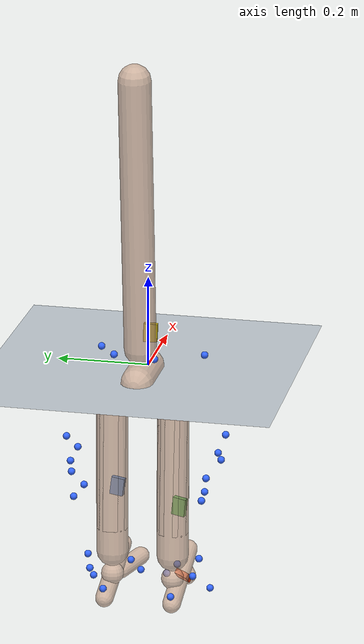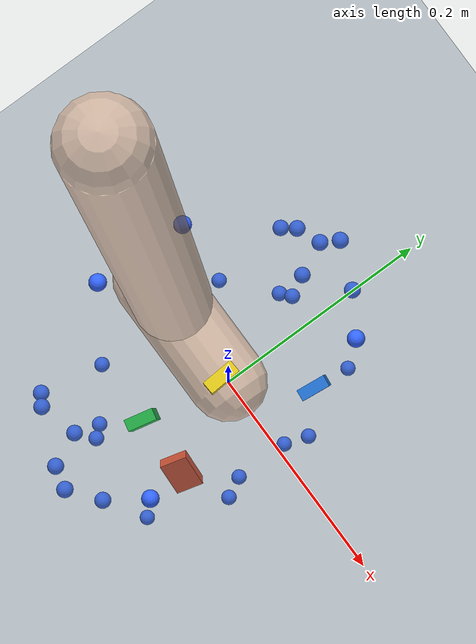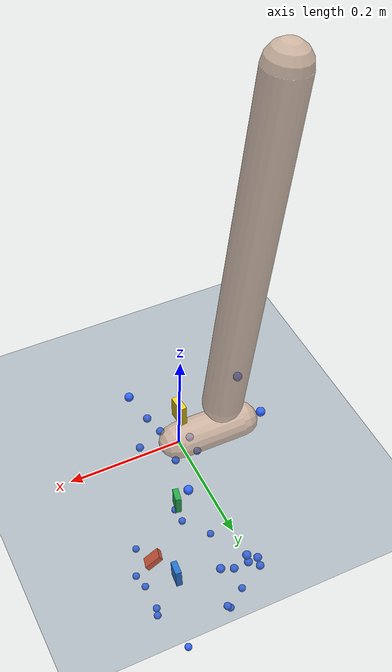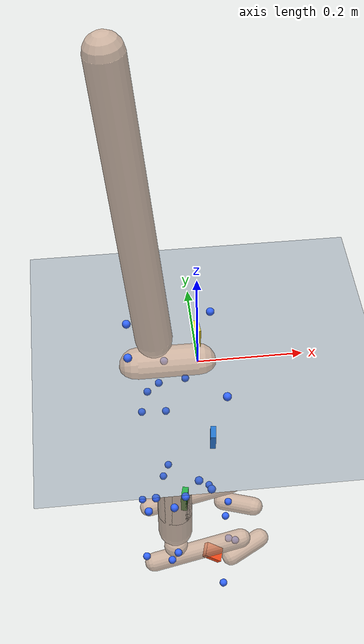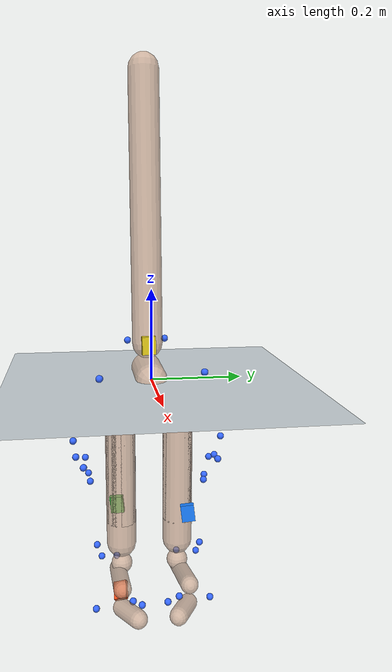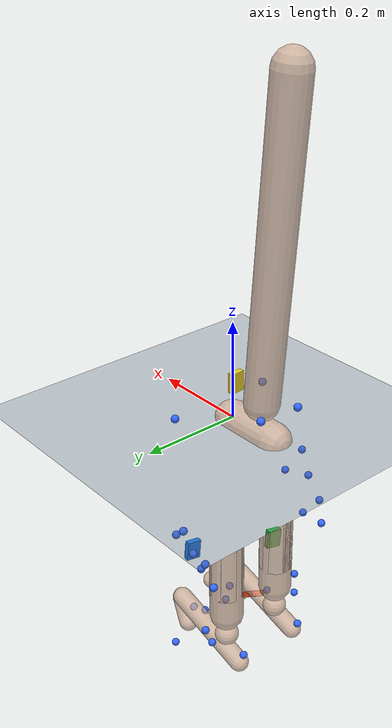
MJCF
<mujoco model="AB25">
  <compiler angle="radian" autolimits="true"/>
  <option timestep="0.005" gravity="0 0 -9.81"><flag contact="disable"/></option>
  <visual><global offwidth="1280" offheight="720"/></visual>
  <default><joint limited="false" damping="0"/><geom contype="0" conaffinity="0"/></default>
  <asset>
    <texture name="grid" type="2d" builtin="checker" rgb1="0.2 0.3 0.4" rgb2="0.3 0.4 0.5" width="512" height="512"/>
    <material name="grid" texture="grid" texrepeat="2 2" texuniform="true"/>
    <material name="skin" rgba="0.8 0.65 0.55 0.7"/>
  </asset>
  <worldbody>
    <light pos="0 0 4" dir="0 0 -1"/>
    <geom name="floor" type="plane" size="0 0 0.05" material="grid"/>
    <body name="pelvis" pos="0 0 0" quat="1 0 0 0">
      <joint name="pelvis_tx" type="slide" axis="1 0 0"/>
      <joint name="pelvis_ty" type="slide" axis="0 0 1"/>
      <joint name="pelvis_tz" type="slide" axis="0 -1 0"/>
      <joint name="pelvis_tilt" type="hinge" axis="0 -1 0"/>
      <joint name="pelvis_list" type="hinge" axis="1 0 0"/>
      <joint name="pelvis_rotation" type="hinge" axis="0 0 1"/>
      <inertial pos="-0.057018595 0 0" mass="8.41204" diaginertia="0.084120373 0.084120373 0.084120373"/>
      <geom type="capsule" fromto="0 0 0 -0.11403719 0 0" size="0.035" material="skin" mass="0"/>
      <site name="m_R_ASIS" pos="0.042614853 -0.11565063 0.016815682" size="0.008" rgba="0.2 0.4 1 1" group="2"/>
      <site name="m_L_ASIS" pos="0.036537914 0.11166799 0.022542233" size="0.008" rgba="0.2 0.4 1 1" group="2"/>
      <site name="m_L_PSIS" pos="-0.12928248 0.046405294 0.066169564" size="0.008" rgba="0.2 0.4 1 1" group="2"/>
      <site name="m_R_PSIS" pos="-0.13249955 -0.04200807 0.063196365" size="0.008" rgba="0.2 0.4 1 1" group="2"/>
      <body name="femur_r" pos="-0.057018595 -0.067341622 -0.053308757" quat="1 0 0 0">
        <joint name="hip_flexion_r" type="hinge" axis="0 -1 0"/>
        <joint name="hip_adduction_r" type="hinge" axis="1 0 0"/>
        <joint name="hip_rotation_r" type="hinge" axis="0 0 1"/>
        <inertial pos="0 0 -0.15331046" mass="6.64377" diaginertia="0.066437737 0.066437737 0.066437737"/>
        <geom type="capsule" fromto="0 0 0 0 0 -0.30662092" size="0.035" material="skin" mass="0"/>
        <site name="m_R_Thigh_Upper" pos="0.039877192 -0.1078605 -0.087309827" size="0.008" rgba="0.2 0.4 1 1" group="2"/>
        <site name="m_R_Thigh_Front" pos="0.066219019 -0.086449809 -0.14124153" size="0.008" rgba="0.2 0.4 1 1" group="2"/>
        <site name="m_R_Thigh_Rear" pos="0.014210524 -0.10327095 -0.13604444" size="0.008" rgba="0.2 0.4 1 1" group="2"/>
        <site name="m_R_Knee_Lat" pos="0.00058716678 -0.058574828 -0.36610361" size="0.008" rgba="0.2 0.4 1 1" group="2"/>
        <site name="imu_thigh" type="box" size="0.02 0.015 0.006" pos="0.094962577 0.14418953 -0.2492192" quat="0.69542814 0.081732553 0.71392667 0.002865828" rgba="0.1 0.5 1 1" group="1"/>
        <body name="tibia_r" pos="0 0 0" quat="1 0 0 0">
          <joint name="knee_r_translation1" type="slide" axis="1 0 0"/>
          <joint name="knee_r_translation2" type="slide" axis="0 0 1"/>
          <joint name="knee_angle_r" type="hinge" axis="0 -1 0"/>
          <inertial pos="0 0 -0.18110796" mass="2.64818" diaginertia="0.02648181 0.02648181 0.02648181"/>
          <geom type="capsule" fromto="0 0 0 0 0 -0.36221593" size="0.035" material="skin" mass="0"/>
          <site name="m_R_Shank_Upper" pos="-0.040971337 -0.081139637 -0.15953262" size="0.008" rgba="0.2 0.4 1 1" group="2"/>
          <site name="m_R_Shank_Front" pos="-0.0054659316 -0.071329649 -0.20556957" size="0.008" rgba="0.2 0.4 1 1" group="2"/>
          <site name="m_R_Shank_Rear" pos="-0.056039005 -0.074445088 -0.20608106" size="0.008" rgba="0.2 0.4 1 1" group="2"/>
          <site name="m_R_Ankle_Lat" pos="-0.011788496 -0.047444483 -0.4034879" size="0.008" rgba="0.2 0.4 1 1" group="2"/>
          <site name="imu_shank" type="box" size="0.02 0.015 0.006" pos="0.020004456 -0.010517082 -0.25453044" quat="0.70066612 0.11371393 0.7030206 -0.043567954" rgba="0.1 0.8 0.2 1" group="1"/>
          <body name="talus_r" pos="0 0 -0.41712065" quat="1 0 0 0">
            <joint name="ankle_angle_r" type="hinge" axis="-0.10501355 -0.97912632 -0.17402245"/>
            <inertial pos="0 0 0" mass="0.0714277" diaginertia="0.00071427675 0.00071427675 0.00071427675"/>
            <geom type="sphere" size="0.025" material="skin" mass="0"/>
            <body name="calcn_r" pos="-0.047309242 -0.0076827803 -0.040693514" quat="1 0 0 0">
              <joint name="subtalar_angle_r" type="hinge" axis="0.78717961 0.12094949 0.60474746"/>
              <inertial pos="0.091772423 0 0.027531727" mass="0.892846" diaginertia="0.0089284594 0.0089284594 0.0089284594"/>
              <geom type="capsule" fromto="0 0 0 0.18354485 0 0.055063454" size="0.02" material="skin" mass="0"/>
              <site name="m_R_Heel" pos="-0.015491373 -0.0010437046 0.0235783" size="0.008" rgba="0.2 0.4 1 1" group="2"/>
              <site name="m_R_Toe_Lat" pos="0.14030319 -0.057755739 -0.016350483" size="0.008" rgba="0.2 0.4 1 1" group="2"/>
              <site name="m_R_Toe_Med" pos="0.16368066 0.045314489 -0.00038220591" size="0.008" rgba="0.2 0.4 1 1" group="2"/>
              <site name="m_R_Toe_Tip" pos="0.17519241 0.023792102 0.018808556" size="0.008" rgba="0.2 0.4 1 1" group="2"/>
              <site name="imu_foot" type="box" size="0.02 0.015 0.006" pos="0.12414203 -0.00047107388 0.015330697" quat="0.93144455 0.17890982 0.30703441 -0.078308351" rgba="1 0.3 0.1 1" group="1"/>
              <body name="toes_r" pos="0.16408909 -0.00099114217 -0.0018354485" quat="1 0 0 0">
                <joint name="mtp_angle_r" type="hinge" axis="-0.5809544 -0.81393611 0"/>
                <inertial pos="0.031753258 0.016060174 0.0055063454" mass="0.154712" diaginertia="0.0015471234 0.0015471234 0.0015471234"/>
                <geom type="capsule" fromto="0 0 0 0.063506517 0.032120348 0.011012691" size="0.02" material="skin" mass="0"/>
              </body>
            </body>
          </body>
        </body>
      </body>
      <body name="femur_l" pos="-0.057018595 0.067341622 -0.053308757" quat="1 0 0 0">
        <joint name="hip_flexion_l" type="hinge" axis="0 -1 0"/>
        <joint name="hip_adduction_l" type="hinge" axis="-1 0 0"/>
        <joint name="hip_rotation_l" type="hinge" axis="0 0 -1"/>
        <inertial pos="0 0 -0.15331046" mass="6.64377" diaginertia="0.066437737 0.066437737 0.066437737"/>
        <geom type="capsule" fromto="0 0 0 0 0 -0.30662092" size="0.035" material="skin" mass="0"/>
        <site name="m_L_Thigh_Upper" pos="0.0031947813 0.10258205 -0.10478482" size="0.008" rgba="0.2 0.4 1 1" group="2"/>
        <site name="m_L_Thigh_Front" pos="0.045402399 0.087521848 -0.14492707" size="0.008" rgba="0.2 0.4 1 1" group="2"/>
        <site name="m_L_Thigh_Rear" pos="-0.010253606 0.090835914 -0.1561543" size="0.008" rgba="0.2 0.4 1 1" group="2"/>
        <site name="m_L_Knee_Lat" pos="0.00121921 0.055426436 -0.37692024" size="0.008" rgba="0.2 0.4 1 1" group="2"/>
        <body name="tibia_l" pos="0 0 0" quat="1 0 0 0">
          <joint name="knee_l_translation1" type="slide" axis="1 0 0"/>
          <joint name="knee_l_translation2" type="slide" axis="0 0 1"/>
          <joint name="knee_angle_l" type="hinge" axis="0 -1 0"/>
          <inertial pos="0 0 -0.18110796" mass="2.64818" diaginertia="0.02648181 0.02648181 0.02648181"/>
          <geom type="capsule" fromto="0 0 0 0 0 -0.36221593" size="0.035" material="skin" mass="0"/>
          <site name="m_L_Shank_Upper" pos="-0.035235741 0.082602125 -0.17088482" size="0.008" rgba="0.2 0.4 1 1" group="2"/>
          <site name="m_L_Shank_Front" pos="0.00090423794 0.06340874 -0.21407627" size="0.008" rgba="0.2 0.4 1 1" group="2"/>
          <site name="m_L_Shank_Rear" pos="-0.049454846 0.074651704 -0.2228283" size="0.008" rgba="0.2 0.4 1 1" group="2"/>
          <site name="m_L_Ankle_Lat" pos="-0.010867541 0.048528527 -0.40527769" size="0.008" rgba="0.2 0.4 1 1" group="2"/>
          <body name="talus_l" pos="0 0 -0.41712065" quat="1 0 0 0">
            <joint name="ankle_angle_l" type="hinge" axis="0.10501355 -0.97912632 0.17402245"/>
            <inertial pos="0 0 0" mass="0.0714277" diaginertia="0.00071427675 0.00071427675 0.00071427675"/>
            <geom type="sphere" size="0.025" material="skin" mass="0"/>
            <body name="calcn_l" pos="-0.047309242 0.0076827803 -0.040693514" quat="1 0 0 0">
              <joint name="subtalar_angle_l" type="hinge" axis="-0.78717961 0.12094949 -0.60474746"/>
              <inertial pos="0.091772423 0 0.027531727" mass="0.892846" diaginertia="0.0089284594 0.0089284594 0.0089284594"/>
              <geom type="capsule" fromto="0 0 0 0.18354485 0 0.055063454" size="0.02" material="skin" mass="0"/>
              <site name="m_L_Heel" pos="-0.013674 -0.00015040144 0.028134311" size="0.008" rgba="0.2 0.4 1 1" group="2"/>
              <site name="m_L_Toe_Lat" pos="0.13914255 0.056456848 -0.0091209322" size="0.008" rgba="0.2 0.4 1 1" group="2"/>
              <site name="m_L_Toe_Med" pos="0.16404444 -0.04591508 0.0027814599" size="0.008" rgba="0.2 0.4 1 1" group="2"/>
              <site name="m_L_Toe_Tip" pos="0.17293303 -0.021384012 0.02086945" size="0.008" rgba="0.2 0.4 1 1" group="2"/>
              <body name="toes_l" pos="0.16408909 0.00099114217 -0.0018354485" quat="1 0 0 0">
                <joint name="mtp_angle_l" type="hinge" axis="0.5809544 -0.81393611 0"/>
                <inertial pos="0.031753258 -0.016060174 0.0055063454" mass="0.154712" diaginertia="0.0015471234 0.0015471234 0.0015471234"/>
                <geom type="capsule" fromto="0 0 0 0.063506517 -0.032120348 0.011012691" size="0.02" material="skin" mass="0"/>
              </body>
            </body>
          </body>
        </body>
      </body>
      <body name="torso" pos="-0.08121319 0 0.065728649" quat="1 0 0 0">
        <joint name="lumbar_extension" type="hinge" axis="0 -1 0"/>
        <joint name="lumbar_bending" type="hinge" axis="1 0 0"/>
        <joint name="lumbar_rotation" type="hinge" axis="0 0 1"/>
        <inertial pos="-0.028419356 0 0.30313979" mass="24.4544" diaginertia="0.24454407 0.24454407 0.24454407"/>
        <geom type="capsule" fromto="0 0 0 -0.056838711 0 0.60627958" size="0.035" material="skin" mass="0"/>
        <site name="imu_trunk" type="box" size="0.02 0.015 0.006" pos="0.078727625 -0.0055310286 0.010705733" quat="0.69844384 -0.014845863 0.71484961 0.030754473" rgba="0.9 0.8 0.1 1" group="1"/>
      </body>
    </body>
  </worldbody>
  <sensor>
<accelerometer name="imu_foot_acc" site="imu_foot"/>
<gyro name="imu_foot_gyr" site="imu_foot"/>
<accelerometer name="imu_shank_acc" site="imu_shank"/>
<gyro name="imu_shank_gyr" site="imu_shank"/>
<accelerometer name="imu_thigh_acc" site="imu_thigh"/>
<gyro name="imu_thigh_gyr" site="imu_thigh"/>
<accelerometer name="imu_trunk_acc" site="imu_trunk"/>
<gyro name="imu_trunk_gyr" site="imu_trunk"/>
</sensor>
</mujoco>
